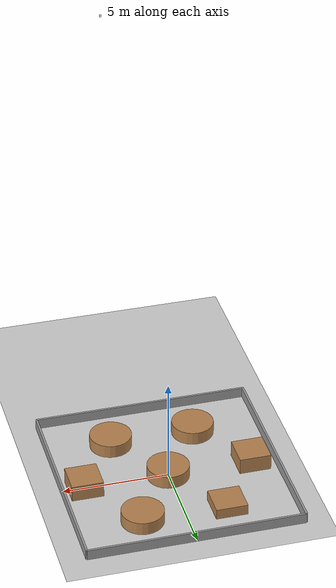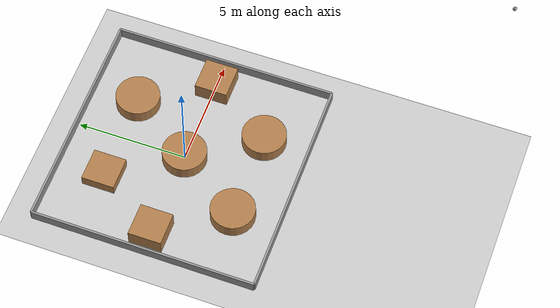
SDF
<sdf version="1.6">
 <world name="default">
  <light name="sun" type="directional">
   <pose>0 0 10 0 -0 0</pose>
   <diffuse>0.8 0.8 0.8 1</diffuse>
   <specular>0.1 0.1 0.1 1</specular>
   <attenuation>
    <range>1000</range>
    <constant>0.9</constant>
    <linear>0.01</linear>
    <quadratic>0.001</quadratic>
   </attenuation>
   <direction>-0.5 0.5 -1</direction>
  </light>
  <model name="video_camera">
   <static>true</static>
   <pose>-0.164147 -12.8298 17.4452 0 1.07419 1.44431</pose>
   <link name="link">
    <visual name="visual"><geometry><box><size>0.1 0.1 0.1</size></box></geometry></visual>
    <sensor name="my_video_camera" type="camera">
     <camera>
      <save enabled="true"><path>/tmp/camera_save_tutorial</path></save>
      <horizontal_fov>1.047</horizontal_fov>
      <image><width>1920</width><height>1080</height></image>
      <clip><near>0.1</near><far>100</far></clip>
     </camera>
     <always_on>1</always_on>
     <update_rate>30</update_rate>
    </sensor>
   </link>
  </model>
  <model name="ground_plane">
   <static>1</static>
   <link name="link">
    <collision name="collision">
     <geometry><plane><normal>0 0 1</normal><size>100 100</size></plane></geometry>
     <surface><friction><ode><mu>100</mu><mu2>50</mu2></ode></friction></surface>
    </collision>
    <visual name="visual">
     <cast_shadows>0</cast_shadows>
     <geometry><plane><normal>0 0 1</normal><size>100 100</size></plane></geometry>
     <material>
      <script><uri>file://media/materials/scripts/gazebo.material</uri><name>Gazebo/Grey</name></script>
     </material>
    </visual>
   </link>
  </model>
  <gravity>0 0 -9.8</gravity>
  <magnetic_field>6e-06 2.3e-05 -4.2e-05</magnetic_field>
  <atmosphere type="adiabatic"/>
  <physics name="default_physics" default="0" type="ode">
   <max_step_size>0.001</max_step_size>
   <real_time_factor>1</real_time_factor>
   <real_time_update_rate>1000</real_time_update_rate>
  </physics>
  <scene><ambient>0.4 0.4 0.4 1</ambient><background>0.7 0.7 0.7 1</background><shadows>1</shadows></scene>
  <spherical_coordinates>
   <surface_model>EARTH_WGS84</surface_model>
   <latitude_deg>0</latitude_deg>
   <longitude_deg>0</longitude_deg>
   <elevation>0</elevation>
   <heading_deg>0</heading_deg>
  </spherical_coordinates>
  <model name="grey_wall">
   <static>1</static>
   <link name="link">
    <pose>0 0 1.4 0 -0 0</pose>
    <collision name="collision"><geometry><box><size>10.2 0.1 0.5</size></box></geometry></collision>
    <visual name="visual">
     <cast_shadows>0</cast_shadows>
     <geometry><box><size>10.2 0.1 0.5</size></box></geometry>
     <material>
      <script>
       <uri>model://grey_wall/materials/scripts</uri>
       <uri>model://grey_wall/materials/textures</uri>
       <name>vrc/grey_wall</name>
      </script>
     </material>
    </visual>
   </link>
   <pose>0 -5.1 -1.1 0 -0 0</pose>
  </model>
  <model name="grey_wall_0">
   <static>1</static>
   <link name="link">
    <pose>0 0 1.4 0 -0 0</pose>
    <collision name="collision"><geometry><box><size>10.2 0.1 0.5</size></box></geometry></collision>
    <visual name="visual">
     <cast_shadows>0</cast_shadows>
     <geometry><box><size>10.2 0.1 0.5</size></box></geometry>
     <material>
      <script>
       <uri>model://grey_wall/materials/scripts</uri>
       <uri>model://grey_wall/materials/textures</uri>
       <name>vrc/grey_wall</name>
      </script>
     </material>
    </visual>
   </link>
   <pose>5.1 0 -1.1 0 -0 1.57</pose>
  </model>
  <model name="grey_wall_0_clone">
   <static>1</static>
   <link name="link">
    <pose>0 0 1.4 0 -0 0</pose>
    <collision name="collision"><geometry><box><size>10.2 0.1 0.5</size></box></geometry></collision>
    <visual name="visual">
     <cast_shadows>0</cast_shadows>
     <geometry><box><size>10.2 0.1 0.5</size></box></geometry>
     <material>
      <script>
       <uri>model://grey_wall/materials/scripts</uri>
       <uri>model://grey_wall/materials/textures</uri>
       <name>vrc/grey_wall</name>
      </script>
     </material>
    </visual>
   </link>
   <pose>-5.1 0 -1.1 0 -0 1.57</pose>
  </model>
  <model name="grey_wall_clone">
   <static>1</static>
   <link name="link">
    <pose>0 0 1.4 0 -0 0</pose>
    <collision name="collision"><geometry><box><size>10.2 0.1 0.5</size></box></geometry></collision>
    <visual name="visual">
     <cast_shadows>0</cast_shadows>
     <geometry><box><size>10.2 0.1 0.5</size></box></geometry>
     <material>
      <script>
       <uri>model://grey_wall/materials/scripts</uri>
       <uri>model://grey_wall/materials/textures</uri>
       <name>vrc/grey_wall</name>
      </script>
     </material>
    </visual>
   </link>
   <pose>0 5.1 -1.1 0 -0 0</pose>
  </model>
  <model name="wooden_peg">
   <static>1</static>
   <link name="link">
    <pose>0 0 -1.1 0 -0 0</pose>
    <inertial>
     <mass>1</mass>
     <inertia>
      <ixx>0.00974923</ixx>
      <ixy>0</ixy>
      <ixz>0</ixz>
      <iyy>9.74923e-06</iyy>
      <iyz>0</iyz>
      <izz>8.31797e-07</izz>
     </inertia>
    </inertial>
    <collision name="collision">
     <geometry><cylinder><radius>1</radius><length>0.8</length></cylinder></geometry>
     <surface>
      <contact>
       <poissons_ratio>0.347</poissons_ratio>
       <elastic_modulus>8.8e+09</elastic_modulus>
       <ode><kp>100000</kp><kd>100</kd><max_vel>0</max_vel><min_depth>0.001</min_depth></ode>
      </contact>
      <friction>
       <torsional>
        <coefficient>1</coefficient>
        <use_patch_radius>0</use_patch_radius>
        <surface_radius>0.01</surface_radius>
       </torsional>
      </friction>
     </surface>
    </collision>
    <visual name="visual">
     <geometry><cylinder><radius>1</radius><length>0.8</length></cylinder></geometry>
     <material>
      <script><uri>file://media/materials/scripts/gazebo.material</uri><name>Gazebo/Wood</name></script>
     </material>
    </visual>
   </link>
   <pose>0 0 1.3 0 -0 0</pose>
  </model>
  <model name="wooden_peg_clone">
   <static>1</static>
   <link name="link">
    <pose>0 0 -1.1 0 -0 0</pose>
    <inertial>
     <mass>1</mass>
     <inertia>
      <ixx>0.00974923</ixx>
      <ixy>0</ixy>
      <ixz>0</ixz>
      <iyy>9.74923e-06</iyy>
      <iyz>0</iyz>
      <izz>8.31797e-07</izz>
     </inertia>
    </inertial>
    <collision name="collision">
     <geometry><cylinder><radius>1</radius><length>0.8</length></cylinder></geometry>
     <surface>
      <contact>
       <poissons_ratio>0.347</poissons_ratio>
       <elastic_modulus>8.8e+09</elastic_modulus>
       <ode><kp>100000</kp><kd>100</kd><max_vel>0</max_vel><min_depth>0.001</min_depth></ode>
      </contact>
      <friction>
       <torsional>
        <coefficient>1</coefficient>
        <use_patch_radius>0</use_patch_radius>
        <surface_radius>0.01</surface_radius>
       </torsional>
      </friction>
     </surface>
    </collision>
    <visual name="visual">
     <geometry><cylinder><radius>1</radius><length>0.8</length></cylinder></geometry>
     <material>
      <script><uri>file://media/materials/scripts/gazebo.material</uri><name>Gazebo/Wood</name></script>
     </material>
    </visual>
   </link>
   <pose>2 3 1.3 0 -0 0</pose>
  </model>
  <model name="wooden_peg_clone_0">
   <static>1</static>
   <link name="link">
    <pose>0 0 -1.1 0 -0 0</pose>
    <inertial>
     <mass>1</mass>
     <inertia>
      <ixx>0.00974923</ixx>
      <ixy>0</ixy>
      <ixz>0</ixz>
      <iyy>9.74923e-06</iyy>
      <iyz>0</iyz>
      <izz>8.31797e-07</izz>
     </inertia>
    </inertial>
    <collision name="collision">
     <geometry><cylinder><radius>1</radius><length>0.8</length></cylinder></geometry>
     <surface>
      <contact>
       <poissons_ratio>0.347</poissons_ratio>
       <elastic_modulus>8.8e+09</elastic_modulus>
       <ode><kp>100000</kp><kd>100</kd><max_vel>0</max_vel><min_depth>0.001</min_depth></ode>
      </contact>
      <friction>
       <torsional>
        <coefficient>1</coefficient>
        <use_patch_radius>0</use_patch_radius>
        <surface_radius>0.01</surface_radius>
       </torsional>
      </friction>
     </surface>
    </collision>
    <visual name="visual">
     <geometry><cylinder><radius>1</radius><length>0.8</length></cylinder></geometry>
     <material>
      <script><uri>file://media/materials/scripts/gazebo.material</uri><name>Gazebo/Wood</name></script>
     </material>
    </visual>
   </link>
   <pose>-2 -3 1.3 0 -0 0</pose>
  </model>
  <model name="wood_cube_10cm">
   <static>1</static>
   <link name="link">
    <pose>0 0 0.05 0 -0 0</pose>
    <inertial>
     <mass>0.5167</mass>
     <inertia>
      <ixx>0.000861167</ixx>
      <ixy>0</ixy>
      <ixz>0</ixz>
      <iyy>0.000861167</iyy>
      <iyz>0</iyz>
      <izz>0.000861167</izz>
     </inertia>
    </inertial>
    <collision name="collision">
     <geometry><box><size>1.5 1.5 0.8</size></box></geometry>
     <surface>
      <contact>
       <poissons_ratio>0.347</poissons_ratio>
       <elastic_modulus>8.8e+09</elastic_modulus>
       <ode><kp>100000</kp><kd>100</kd><max_vel>100</max_vel><min_depth>0.001</min_depth></ode>
      </contact>
      <friction>
       <torsional>
        <coefficient>1</coefficient>
        <use_patch_radius>0</use_patch_radius>
        <surface_radius>0.01</surface_radius>
       </torsional>
      </friction>
     </surface>
    </collision>
    <visual name="visual">
     <geometry><box><size>1.5 1.5 0.8</size></box></geometry>
     <material>
      <script><uri>file://media/materials/scripts/gazebo.material</uri><name>Gazebo/Wood</name></script>
     </material>
    </visual>
   </link>
   <pose>-4 0 0.3 0 -0 0</pose>
  </model>
  <model name="wood_cube_10cm_clone_0">
   <static>1</static>
   <link name="link">
    <pose>0 0 0.05 0 -0 0</pose>
    <inertial>
     <mass>0.5167</mass>
     <inertia>
      <ixx>0.000861167</ixx>
      <ixy>0</ixy>
      <ixz>0</ixz>
      <iyy>0.000861167</iyy>
      <iyz>0</iyz>
      <izz>0.000861167</izz>
     </inertia>
    </inertial>
    <collision name="collision">
     <geometry><box><size>1.5 1.5 0.8</size></box></geometry>
     <surface>
      <contact>
       <poissons_ratio>0.347</poissons_ratio>
       <elastic_modulus>8.8e+09</elastic_modulus>
       <ode><kp>100000</kp><kd>100</kd><max_vel>100</max_vel><min_depth>0.001</min_depth></ode>
      </contact>
      <friction>
       <torsional>
        <coefficient>1</coefficient>
        <use_patch_radius>0</use_patch_radius>
        <surface_radius>0.01</surface_radius>
       </torsional>
      </friction>
     </surface>
    </collision>
    <visual name="visual">
     <geometry><box><size>1.5 1.5 0.8</size></box></geometry>
     <material>
      <script><uri>file://media/materials/scripts/gazebo.material</uri><name>Gazebo/Wood</name></script>
     </material>
    </visual>
   </link>
   <pose>4 0 0.3 0 -0 0</pose>
  </model>
  <model name="wood_cube_10cm_clone_1">
   <static>1</static>
   <link name="link">
    <pose>0 0 0.05 0 -0 0</pose>
    <inertial>
     <mass>0.5167</mass>
     <inertia>
      <ixx>0.000861167</ixx>
      <ixy>0</ixy>
      <ixz>0</ixz>
      <iyy>0.000861167</iyy>
      <iyz>0</iyz>
      <izz>0.000861167</izz>
     </inertia>
    </inertial>
    <collision name="collision">
     <geometry><box><size>1.5 1.5 0.8</size></box></geometry>
     <surface>
      <contact>
       <poissons_ratio>0.347</poissons_ratio>
       <elastic_modulus>8.8e+09</elastic_modulus>
       <ode><kp>100000</kp><kd>100</kd><max_vel>100</max_vel><min_depth>0.001</min_depth></ode>
      </contact>
      <friction>
       <torsional>
        <coefficient>1</coefficient>
        <use_patch_radius>0</use_patch_radius>
        <surface_radius>0.01</surface_radius>
       </torsional>
      </friction>
     </surface>
    </collision>
    <visual name="visual">
     <geometry><box><size>1.5 1.5 0.8</size></box></geometry>
     <material>
      <script><uri>file://media/materials/scripts/gazebo.material</uri><name>Gazebo/Wood</name></script>
     </material>
    </visual>
   </link>
   <pose>-2 3 0.03 0 -0 0</pose>
  </model>
  <model name="wooden_peg_clone_0_clone">
   <static>1</static>
   <link name="link">
    <pose>0 0 -1.1 0 -0 0</pose>
    <inertial>
     <mass>1</mass>
     <inertia>
      <ixx>0.00974923</ixx>
      <ixy>0</ixy>
      <ixz>0</ixz>
      <iyy>9.74923e-06</iyy>
      <iyz>0</iyz>
      <izz>8.31797e-07</izz>
     </inertia>
    </inertial>
    <collision name="collision">
     <geometry><cylinder><radius>1</radius><length>0.8</length></cylinder></geometry>
     <surface>
      <contact>
       <poissons_ratio>0.347</poissons_ratio>
       <elastic_modulus>8.8e+09</elastic_modulus>
       <ode><kp>100000</kp><kd>100</kd><max_vel>0</max_vel><min_depth>0.001</min_depth></ode>
      </contact>
      <friction>
       <torsional>
        <coefficient>1</coefficient>
        <use_patch_radius>0</use_patch_radius>
        <surface_radius>0.01</surface_radius>
       </torsional>
      </friction>
     </surface>
    </collision>
    <visual name="visual">
     <geometry><cylinder><radius>1</radius><length>0.8</length></cylinder></geometry>
     <material>
      <script><uri>file://media/materials/scripts/gazebo.material</uri><name>Gazebo/Wood</name></script>
     </material>
    </visual>
   </link>
   <pose>2 -3 1.3 0 -0 0</pose>
  </model>
 </world>
</sdf>
